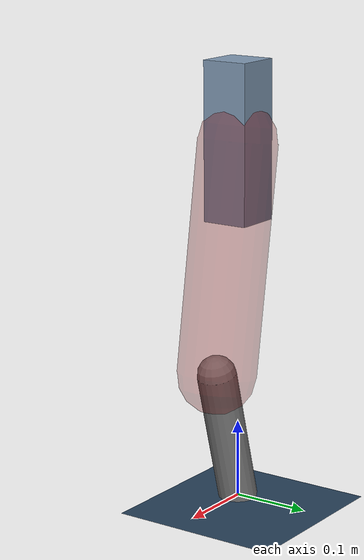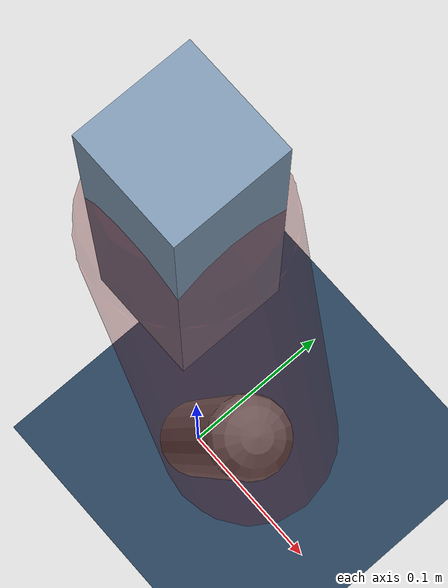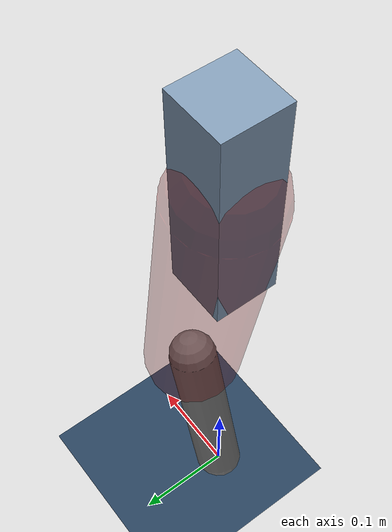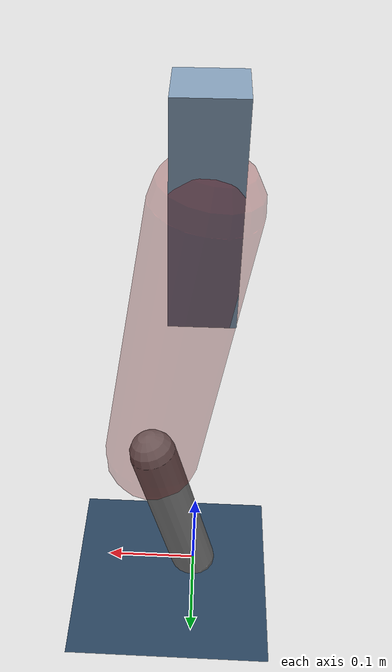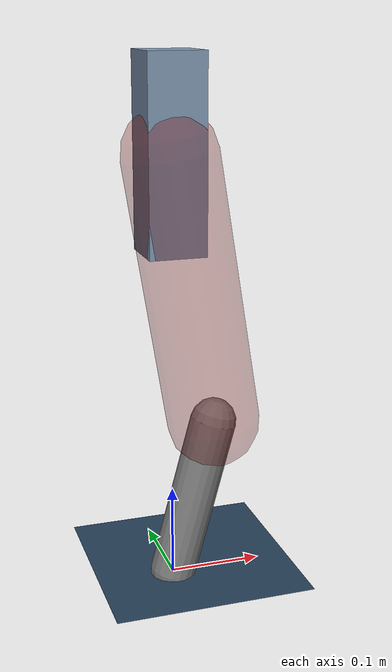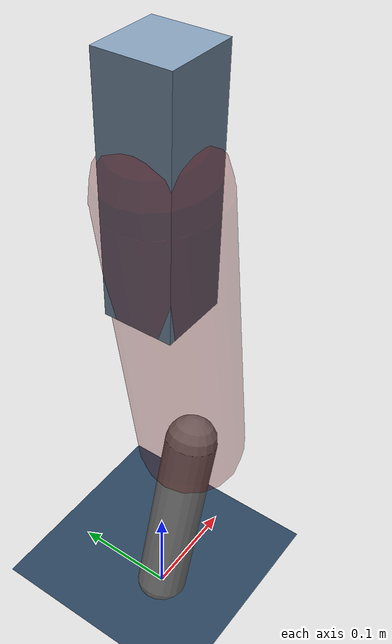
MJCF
<mujoco model="Hopper2D">
	<compiler inertiafromgeom="true" angle="radian" />
	<option timestep="0.001" integrator="implicit" cone="elliptic" solver="Newton" tolerance="1e-10" />

	<default>
		<geom contype="1" conaffinity="1" condim="3" friction="2 0.005 0.0001" solref="0.005 1" />
		<joint limited="true" damping="0.1" />
	</default>

	<asset>
		<texture name="skybox" type="skybox" builtin="gradient" rgb1=".4 .6 .8" rgb2="0 0 0" width="800" height="800" />
		<texture name="grid" type="2d" builtin="checker" rgb1=".1 .2 .3" rgb2=".2 .3 .4" width="300" height="300" mark="edge" markrgb=".2 .3 .4" />
		<material name="ground" texture="grid" texrepeat="1 1" texuniform="true" reflectance="0.1" />
		<material name="leg" rgba="0.5 0.6 0.7 1" />
	</asset>

	<worldbody>

		<geom name="floor" type="plane" size="5 5 0.25" material="ground" />

		<light directional="false" diffuse="0.8 0.8 0.8" specular="0.3 0.3 0.3" pos="0 0 2" dir="0 0 -1" />
		<light mode="targetbodycom" target="base" directional="false" diffuse="0.8 0.8 0.8" specular="0.3 0.3 0.3" pos="0 0 2" dir="0 0 -1" />

		<camera name="fixed" pos="0 -2 1" xyaxes="1 0 0 0 0 1" />
		<camera name="tracking" mode="trackcom" pos="0 -3 1" />

		<body name="root" pos="0 0 0.46291770410116506">
			<joint name="slide_x" type="slide" axis="1 0 0" range="-100 100" />
			<joint name="slide_z" type="slide" axis="0 0 1" range="0 10" />

			<body name="base" pos="0 0 0">
				<geom name="torso" type="box" size="0.03 0.03 0.1" mass="3.1350000000000002" material="leg" />

				<body name="link1" pos="0 0 0" euler="0 1.4094690887797479 0">
					<joint type="hinge" axis="0 -1 0" pos="0 0 0" name="hinge1" limited="true" range="-3.14 3.14" stiffness="0" damping="0.1" />
					<geom name="thigh" type="capsule" fromto="0 0 0 0.29224756143032615 0 0" size="0.05" rgba="0.5 0 0 0.3" mass="0.9678684158618807" />

					<body name="link2" pos="0.29224756143032615 0 0" euler="0 0.4241717902820278 0">
						<joint type="hinge" axis="0 -1 0" pos="0 0 0" name="hinge2" limited="true" range="-3.14 3.14" stiffness="0" damping="0.1" />
						<geom name="shank" type="capsule" fromto="0 0 0 0.18067014267083892 0 0" size="0.025" mass="0.384503128403755" />

					</body>
				</body>
			</body>
		</body>
	</worldbody>

	<actuator>
		<motor name="torque1" joint="hinge1" ctrlrange="-76.06220859122031 76.06220859122031" ctrllimited="true" gear="1" />
		<motor name="torque2" joint="hinge2" ctrlrange="-233.63994378331273 233.63994378331273" ctrllimited="true" gear="1" />
	</actuator>
</mujoco>
